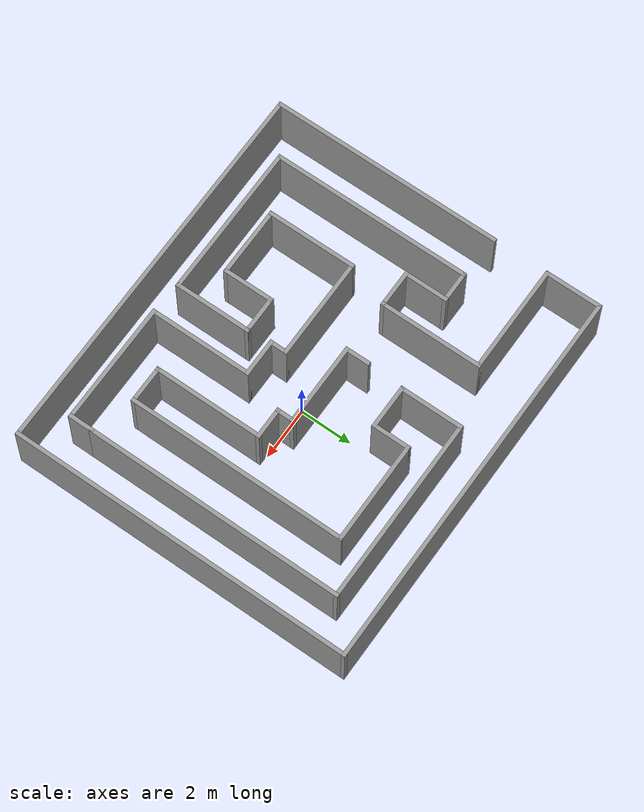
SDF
<?xml version='1.0'?>
<sdf version='1.7'>
  <model name='test'>
    <pose>-0.614659 -0.052239 0 0 -0 0</pose>
    <link name='Wall_10'>
      <collision name='Wall_10_Collision'>
        <geometry>
          <box>
            <size>4 0.15 2.5</size>
          </box>
        </geometry>
        <pose>0 0 1.25 0 -0 0</pose>
      </collision>
      <visual name='Wall_10_Visual'>
        <pose>0 0 1.25 0 -0 0</pose>
        <geometry>
          <box>
            <size>4 0.15 2.5</size>
          </box>
        </geometry>
        <material>
          <script>
            <uri>file://media/materials/scripts/gazebo.material</uri>
            <name>Gazebo/Grey</name>
          </script>
          <ambient>1 1 1 1</ambient>
        </material>
        <meta>
          <layer>0</layer>
        </meta>
      </visual>
      <pose>-3.325 2.525 0 0 -0 -1.5708</pose>
    </link>
    <link name='Wall_11'>
      <collision name='Wall_11_Collision'>
        <geometry>
          <box>
            <size>1.5 0.15 2.5</size>
          </box>
        </geometry>
        <pose>0 0 1.25 0 -0 0</pose>
      </collision>
      <visual name='Wall_11_Visual'>
        <pose>0 0 1.25 0 -0 0</pose>
        <geometry>
          <box>
            <size>1.5 0.15 2.5</size>
          </box>
        </geometry>
        <material>
          <script>
            <uri>file://media/materials/scripts/gazebo.material</uri>
            <name>Gazebo/Grey</name>
          </script>
          <ambient>1 1 1 1</ambient>
        </material>
        <meta>
          <layer>0</layer>
        </meta>
      </visual>
      <pose>-4 0.6 0 0 -0 3.14159</pose>
    </link>
    <link name='Wall_12'>
      <collision name='Wall_12_Collision'>
        <geometry>
          <box>
            <size>1.75 0.15 2.5</size>
          </box>
        </geometry>
        <pose>0 0 1.25 0 -0 0</pose>
      </collision>
      <visual name='Wall_12_Visual'>
        <pose>0 0 1.25 0 -0 0</pose>
        <geometry>
          <box>
            <size>1.75 0.15 2.5</size>
          </box>
        </geometry>
        <material>
          <script>
            <uri>file://media/materials/scripts/gazebo.material</uri>
            <name>Gazebo/Grey</name>
          </script>
          <ambient>1 1 1 1</ambient>
        </material>
        <meta>
          <layer>0</layer>
        </meta>
      </visual>
      <pose>-4.675 1.4 0 0 -0 1.5708</pose>
    </link>
    <link name='Wall_13'>
      <collision name='Wall_13_Collision'>
        <geometry>
          <box>
            <size>1.25 0.15 2.5</size>
          </box>
        </geometry>
        <pose>0 0 1.25 0 -0 0</pose>
      </collision>
      <visual name='Wall_13_Visual'>
        <pose>0 0 1.25 0 -0 0</pose>
        <geometry>
          <box>
            <size>1.25 0.15 2.5</size>
          </box>
        </geometry>
        <material>
          <script>
            <uri>file://media/materials/scripts/gazebo.material</uri>
            <name>Gazebo/Grey</name>
          </script>
          <ambient>1 1 1 1</ambient>
        </material>
        <meta>
          <layer>0</layer>
        </meta>
      </visual>
      <pose>-5.225 2.2 0 0 -0 3.14159</pose>
    </link>
    <link name='Wall_14'>
      <collision name='Wall_14_Collision'>
        <geometry>
          <box>
            <size>7.75 0.15 2.5</size>
          </box>
        </geometry>
        <pose>0 0 1.25 0 -0 0</pose>
      </collision>
      <visual name='Wall_14_Visual'>
        <pose>0 0 1.25 0 -0 0</pose>
        <geometry>
          <box>
            <size>7.75 0.15 2.5</size>
          </box>
        </geometry>
        <material>
          <script>
            <uri>file://media/materials/scripts/gazebo.material</uri>
            <name>Gazebo/Grey</name>
          </script>
          <ambient>1 1 1 1</ambient>
        </material>
        <meta>
          <layer>0</layer>
        </meta>
      </visual>
      <pose>-5.775 -1.6 0 0 -0 -1.5708</pose>
    </link>
    <link name='Wall_15'>
      <collision name='Wall_15_Collision'>
        <geometry>
          <box>
            <size>6 0.15 2.5</size>
          </box>
        </geometry>
        <pose>0 0 1.25 0 -0 0</pose>
      </collision>
      <visual name='Wall_15_Visual'>
        <pose>0 0 1.25 0 -0 0</pose>
        <geometry>
          <box>
            <size>6 0.15 2.5</size>
          </box>
        </geometry>
        <material>
          <script>
            <uri>file://media/materials/scripts/gazebo.material</uri>
            <name>Gazebo/Grey</name>
          </script>
          <ambient>1 1 1 1</ambient>
        </material>
        <meta>
          <layer>0</layer>
        </meta>
      </visual>
      <pose>-2.85 -5.4 0 0 -0 0</pose>
    </link>
    <link name='Wall_16'>
      <collision name='Wall_16_Collision'>
        <geometry>
          <box>
            <size>3 0.15 2.5</size>
          </box>
        </geometry>
        <pose>0 0 1.25 0 -0 0</pose>
      </collision>
      <visual name='Wall_16_Visual'>
        <pose>0 0 1.25 0 -0 0</pose>
        <geometry>
          <box>
            <size>3 0.15 2.5</size>
          </box>
        </geometry>
        <material>
          <script>
            <uri>file://media/materials/scripts/gazebo.material</uri>
            <name>Gazebo/Grey</name>
          </script>
          <ambient>1 1 1 1</ambient>
        </material>
        <meta>
          <layer>0</layer>
        </meta>
      </visual>
      <pose>0.075 -3.975 0 0 -0 1.5708</pose>
    </link>
    <link name='Wall_17'>
      <collision name='Wall_17_Collision'>
        <geometry>
          <box>
            <size>1.5 0.15 2.5</size>
          </box>
        </geometry>
        <pose>0 0 1.25 0 -0 0</pose>
      </collision>
      <visual name='Wall_17_Visual'>
        <pose>0 0 1.25 0 -0 0</pose>
        <geometry>
          <box>
            <size>1.5 0.15 2.5</size>
          </box>
        </geometry>
        <material>
          <script>
            <uri>file://media/materials/scripts/gazebo.material</uri>
            <name>Gazebo/Grey</name>
          </script>
          <ambient>1 1 1 1</ambient>
        </material>
        <meta>
          <layer>0</layer>
        </meta>
      </visual>
      <pose>-0.6 -2.55 0 0 -0 3.14159</pose>
    </link>
    <link name='Wall_18'>
      <collision name='Wall_18_Collision'>
        <geometry>
          <box>
            <size>2 0.15 2.5</size>
          </box>
        </geometry>
        <pose>0 0 1.25 0 -0 0</pose>
      </collision>
      <visual name='Wall_18_Visual'>
        <pose>0 0 1.25 0 -0 0</pose>
        <geometry>
          <box>
            <size>2 0.15 2.5</size>
          </box>
        </geometry>
        <material>
          <script>
            <uri>file://media/materials/scripts/gazebo.material</uri>
            <name>Gazebo/Grey</name>
          </script>
          <ambient>1 1 1 1</ambient>
        </material>
        <meta>
          <layer>0</layer>
        </meta>
      </visual>
      <pose>-1.275 -3.475 0 0 -0 -1.5708</pose>
    </link>
    <link name='Wall_19'>
      <collision name='Wall_19_Collision'>
        <geometry>
          <box>
            <size>2.75 0.15 2.5</size>
          </box>
        </geometry>
        <pose>0 0 1.25 0 -0 0</pose>
      </collision>
      <visual name='Wall_19_Visual'>
        <pose>0 0 1.25 0 -0 0</pose>
        <geometry>
          <box>
            <size>2.75 0.15 2.5</size>
          </box>
        </geometry>
        <material>
          <script>
            <uri>file://media/materials/scripts/gazebo.material</uri>
            <name>Gazebo/Grey</name>
          </script>
          <ambient>1 1 1 1</ambient>
        </material>
        <meta>
          <layer>0</layer>
        </meta>
      </visual>
      <pose>-2.575 -4.4 0 0 -0 3.14159</pose>
    </link>
    <link name='Wall_20'>
      <collision name='Wall_20_Collision'>
        <geometry>
          <box>
            <size>3.5 0.15 2.5</size>
          </box>
        </geometry>
        <pose>0 0 1.25 0 -0 0</pose>
      </collision>
      <visual name='Wall_20_Visual'>
        <pose>0 0 1.25 0 -0 0</pose>
        <geometry>
          <box>
            <size>3.5 0.15 2.5</size>
          </box>
        </geometry>
        <material>
          <script>
            <uri>file://media/materials/scripts/gazebo.material</uri>
            <name>Gazebo/Grey</name>
          </script>
          <ambient>1 1 1 1</ambient>
        </material>
        <meta>
          <layer>0</layer>
        </meta>
      </visual>
      <pose>-3.875 -2.725 0 0 -0 1.5708</pose>
    </link>
    <link name='Wall_21'>
      <collision name='Wall_21_Collision'>
        <geometry>
          <box>
            <size>4 0.15 2.5</size>
          </box>
        </geometry>
        <pose>0 0 1.25 0 -0 0</pose>
      </collision>
      <visual name='Wall_21_Visual'>
        <pose>0 0 1.25 0 -0 0</pose>
        <geometry>
          <box>
            <size>4 0.15 2.5</size>
          </box>
        </geometry>
        <material>
          <script>
            <uri>file://media/materials/scripts/gazebo.material</uri>
            <name>Gazebo/Grey</name>
          </script>
          <ambient>1 1 1 1</ambient>
        </material>
        <meta>
          <layer>0</layer>
        </meta>
      </visual>
      <pose>-1.95 -1.05 0 0 -0 0</pose>
    </link>
    <link name='Wall_22'>
      <collision name='Wall_22_Collision'>
        <geometry>
          <box>
            <size>0.75 0.15 2.5</size>
          </box>
        </geometry>
        <pose>0 0 1.25 0 -0 0</pose>
      </collision>
      <visual name='Wall_22_Visual'>
        <pose>0 0 1.25 0 -0 0</pose>
        <geometry>
          <box>
            <size>0.75 0.15 2.5</size>
          </box>
        </geometry>
        <material>
          <script>
            <uri>file://media/materials/scripts/gazebo.material</uri>
            <name>Gazebo/Grey</name>
          </script>
          <ambient>1 1 1 1</ambient>
        </material>
        <meta>
          <layer>0</layer>
        </meta>
      </visual>
      <pose>-0.025 -1.35 0 0 -0 -1.5708</pose>
    </link>
    <link name='Wall_23'>
      <collision name='Wall_23_Collision'>
        <geometry>
          <box>
            <size>1.5 0.15 2.5</size>
          </box>
        </geometry>
        <pose>0 0 1.25 0 -0 0</pose>
      </collision>
      <visual name='Wall_23_Visual'>
        <pose>0 0 1.25 0 -0 0</pose>
        <geometry>
          <box>
            <size>1.5 0.15 2.5</size>
          </box>
        </geometry>
        <material>
          <script>
            <uri>file://media/materials/scripts/gazebo.material</uri>
            <name>Gazebo/Grey</name>
          </script>
          <ambient>1 1 1 1</ambient>
        </material>
        <meta>
          <layer>0</layer>
        </meta>
      </visual>
      <pose>0.65 -1.65 0 0 -0 0</pose>
    </link>
    <link name='Wall_24'>
      <collision name='Wall_24_Collision'>
        <geometry>
          <box>
            <size>4 0.15 2.5</size>
          </box>
        </geometry>
        <pose>0 0 1.25 0 -0 0</pose>
      </collision>
      <visual name='Wall_24_Visual'>
        <pose>0 0 1.25 0 -0 0</pose>
        <geometry>
          <box>
            <size>4 0.15 2.5</size>
          </box>
        </geometry>
        <material>
          <script>
            <uri>file://media/materials/scripts/gazebo.material</uri>
            <name>Gazebo/Grey</name>
          </script>
          <ambient>1 1 1 1</ambient>
        </material>
        <meta>
          <layer>0</layer>
        </meta>
      </visual>
      <pose>1.325 -3.575 0 0 -0 -1.5708</pose>
    </link>
    <link name='Wall_25'>
      <collision name='Wall_25_Collision'>
        <geometry>
          <box>
            <size>4.75 0.15 2.5</size>
          </box>
        </geometry>
        <pose>0 0 1.25 0 -0 0</pose>
      </collision>
      <visual name='Wall_25_Visual'>
        <pose>0 0 1.25 0 -0 0</pose>
        <geometry>
          <box>
            <size>4.75 0.15 2.5</size>
          </box>
        </geometry>
        <material>
          <script>
            <uri>file://media/materials/scripts/gazebo.material</uri>
            <name>Gazebo/Grey</name>
          </script>
          <ambient>1 1 1 1</ambient>
        </material>
        <meta>
          <layer>0</layer>
        </meta>
      </visual>
      <pose>3.625 -5.5 0 0 -0 0</pose>
    </link>
    <link name='Wall_26'>
      <collision name='Wall_26_Collision'>
        <geometry>
          <box>
            <size>1 0.15 2.5</size>
          </box>
        </geometry>
        <pose>0 0 1.25 0 -0 0</pose>
      </collision>
      <visual name='Wall_26_Visual'>
        <pose>0 0 1.25 0 -0 0</pose>
        <geometry>
          <box>
            <size>1 0.15 2.5</size>
          </box>
        </geometry>
        <material>
          <script>
            <uri>file://media/materials/scripts/gazebo.material</uri>
            <name>Gazebo/Grey</name>
          </script>
          <ambient>1 1 1 1</ambient>
        </material>
        <meta>
          <layer>0</layer>
        </meta>
      </visual>
      <pose>5.925 -5.075 0 0 -0 1.5708</pose>
    </link>
    <link name='Wall_27'>
      <collision name='Wall_27_Collision'>
        <geometry>
          <box>
            <size>10 0.15 2.5</size>
          </box>
        </geometry>
        <pose>0 0 1.25 0 -0 0</pose>
      </collision>
      <visual name='Wall_27_Visual'>
        <pose>0 0 1.25 0 -0 0</pose>
        <geometry>
          <box>
            <size>10 0.15 2.5</size>
          </box>
        </geometry>
        <material>
          <script>
            <uri>file://media/materials/scripts/gazebo.material</uri>
            <name>Gazebo/Grey</name>
          </script>
          <ambient>1 1 1 1</ambient>
        </material>
        <meta>
          <layer>0</layer>
        </meta>
      </visual>
      <pose>5.925 0.275 0 0 -0 1.5708</pose>
    </link>
    <link name='Wall_28'>
      <collision name='Wall_28_Collision'>
        <geometry>
          <box>
            <size>7.25 0.15 2.5</size>
          </box>
        </geometry>
        <pose>0 0 1.25 0 -0 0</pose>
      </collision>
      <visual name='Wall_28_Visual'>
        <pose>0 0 1.25 0 -0 0</pose>
        <geometry>
          <box>
            <size>7.25 0.15 2.5</size>
          </box>
        </geometry>
        <material>
          <script>
            <uri>file://media/materials/scripts/gazebo.material</uri>
            <name>Gazebo/Grey</name>
          </script>
          <ambient>1 1 1 1</ambient>
        </material>
        <meta>
          <layer>0</layer>
        </meta>
      </visual>
      <pose>2.375 5.2 0 0 -0 3.14159</pose>
    </link>
    <link name='Wall_29'>
      <collision name='Wall_29_Collision'>
        <geometry>
          <box>
            <size>2.5 0.15 2.5</size>
          </box>
        </geometry>
        <pose>0 0 1.25 0 -0 0</pose>
      </collision>
      <visual name='Wall_29_Visual'>
        <pose>0 0 1.25 0 -0 0</pose>
        <geometry>
          <box>
            <size>2.5 0.15 2.5</size>
          </box>
        </geometry>
        <material>
          <script>
            <uri>file://media/materials/scripts/gazebo.material</uri>
            <name>Gazebo/Grey</name>
          </script>
          <ambient>1 1 1 1</ambient>
        </material>
        <meta>
          <layer>0</layer>
        </meta>
      </visual>
      <pose>-1.175 4.025 0 0 -0 -1.5708</pose>
    </link>
    <link name='Wall_30'>
      <collision name='Wall_30_Collision'>
        <geometry>
          <box>
            <size>1.75 0.15 2.5</size>
          </box>
        </geometry>
        <pose>0 0 1.25 0 -0 0</pose>
      </collision>
      <visual name='Wall_30_Visual'>
        <pose>0 0 1.25 0 -0 0</pose>
        <geometry>
          <box>
            <size>1.75 0.15 2.5</size>
          </box>
        </geometry>
        <material>
          <script>
            <uri>file://media/materials/scripts/gazebo.material</uri>
            <name>Gazebo/Grey</name>
          </script>
          <ambient>1 1 1 1</ambient>
        </material>
        <meta>
          <layer>0</layer>
        </meta>
      </visual>
      <pose>-0.375 2.85 0 0 -0 0</pose>
    </link>
    <link name='Wall_31'>
      <collision name='Wall_31_Collision'>
        <geometry>
          <box>
            <size>1.5 0.15 2.5</size>
          </box>
        </geometry>
        <pose>0 0 1.25 0 -0 0</pose>
      </collision>
      <visual name='Wall_31_Visual'>
        <pose>0 0 1.25 0 -0 0</pose>
        <geometry>
          <box>
            <size>1.5 0.15 2.5</size>
          </box>
        </geometry>
        <material>
          <script>
            <uri>file://media/materials/scripts/gazebo.material</uri>
            <name>Gazebo/Grey</name>
          </script>
          <ambient>1 1 1 1</ambient>
        </material>
        <meta>
          <layer>0</layer>
        </meta>
      </visual>
      <pose>0.425 3.525 0 0 -0 1.5708</pose>
    </link>
    <link name='Wall_32'>
      <collision name='Wall_32_Collision'>
        <geometry>
          <box>
            <size>4 0.15 2.5</size>
          </box>
        </geometry>
        <pose>0 0 1.25 0 -0 0</pose>
      </collision>
      <visual name='Wall_32_Visual'>
        <pose>0 0 1.25 0 -0 0</pose>
        <geometry>
          <box>
            <size>4 0.15 2.5</size>
          </box>
        </geometry>
        <material>
          <script>
            <uri>file://media/materials/scripts/gazebo.material</uri>
            <name>Gazebo/Grey</name>
          </script>
          <ambient>1 1 1 1</ambient>
        </material>
        <meta>
          <layer>0</layer>
        </meta>
      </visual>
      <pose>2.35 4.2 0 0 -0 0</pose>
    </link>
    <link name='Wall_33'>
      <collision name='Wall_33_Collision'>
        <geometry>
          <box>
            <size>8.5 0.15 2.5</size>
          </box>
        </geometry>
        <pose>0 0 1.25 0 -0 0</pose>
      </collision>
      <visual name='Wall_33_Visual'>
        <pose>0 0 1.25 0 -0 0</pose>
        <geometry>
          <box>
            <size>8.5 0.15 2.5</size>
          </box>
        </geometry>
        <material>
          <script>
            <uri>file://media/materials/scripts/gazebo.material</uri>
            <name>Gazebo/Grey</name>
          </script>
          <ambient>1 1 1 1</ambient>
        </material>
        <meta>
          <layer>0</layer>
        </meta>
      </visual>
      <pose>4.275 0.025 0 0 -0 -1.5708</pose>
    </link>
    <link name='Wall_34'>
      <collision name='Wall_34_Collision'>
        <geometry>
          <box>
            <size>1.5 0.15 2.5</size>
          </box>
        </geometry>
        <pose>0 0 1.25 0 -0 0</pose>
      </collision>
      <visual name='Wall_34_Visual'>
        <pose>0 0 1.25 0 -0 0</pose>
        <geometry>
          <box>
            <size>1.5 0.15 2.5</size>
          </box>
        </geometry>
        <material>
          <script>
            <uri>file://media/materials/scripts/gazebo.material</uri>
            <name>Gazebo/Grey</name>
          </script>
          <ambient>1 1 1 1</ambient>
        </material>
        <meta>
          <layer>0</layer>
        </meta>
      </visual>
      <pose>3.6 -4.15 0 0 -0 3.14159</pose>
    </link>
    <link name='Wall_35'>
      <collision name='Wall_35_Collision'>
        <geometry>
          <box>
            <size>4.25 0.15 2.5</size>
          </box>
        </geometry>
        <pose>0 0 1.25 0 -0 0</pose>
      </collision>
      <visual name='Wall_35_Visual'>
        <pose>0 0 1.25 0 -0 0</pose>
        <geometry>
          <box>
            <size>4.25 0.15 2.5</size>
          </box>
        </geometry>
        <material>
          <script>
            <uri>file://media/materials/scripts/gazebo.material</uri>
            <name>Gazebo/Grey</name>
          </script>
          <ambient>1 1 1 1</ambient>
        </material>
        <meta>
          <layer>0</layer>
        </meta>
      </visual>
      <pose>2.925 -2.1 0 0 -0 1.5708</pose>
    </link>
    <link name='Wall_36'>
      <collision name='Wall_36_Collision'>
        <geometry>
          <box>
            <size>1.25 0.15 2.5</size>
          </box>
        </geometry>
        <pose>0 0 1.25 0 -0 0</pose>
      </collision>
      <visual name='Wall_36_Visual'>
        <pose>0 0 1.25 0 -0 0</pose>
        <geometry>
          <box>
            <size>1.25 0.15 2.5</size>
          </box>
        </geometry>
        <material>
          <script>
            <uri>file://media/materials/scripts/gazebo.material</uri>
            <name>Gazebo/Grey</name>
          </script>
          <ambient>1 1 1 1</ambient>
        </material>
        <meta>
          <layer>0</layer>
        </meta>
      </visual>
      <pose>2.375 -0.05 0 0 -0 3.14159</pose>
    </link>
    <link name='Wall_37'>
      <collision name='Wall_37_Collision'>
        <geometry>
          <box>
            <size>0.75 0.15 2.5</size>
          </box>
        </geometry>
        <pose>0 0 1.25 0 -0 0</pose>
      </collision>
      <visual name='Wall_37_Visual'>
        <pose>0 0 1.25 0 -0 0</pose>
        <geometry>
          <box>
            <size>0.75 0.15 2.5</size>
          </box>
        </geometry>
        <material>
          <script>
            <uri>file://media/materials/scripts/gazebo.material</uri>
            <name>Gazebo/Grey</name>
          </script>
          <ambient>1 1 1 1</ambient>
        </material>
        <meta>
          <layer>0</layer>
        </meta>
      </visual>
      <pose>1.825 0.25 0 0 -0 1.5708</pose>
    </link>
    <link name='Wall_38'>
      <collision name='Wall_38_Collision'>
        <geometry>
          <box>
            <size>3.25 0.15 2.5</size>
          </box>
        </geometry>
        <pose>0 0 1.25 0 -0 0</pose>
      </collision>
      <visual name='Wall_38_Visual'>
        <pose>0 0 1.25 0 -0 0</pose>
        <geometry>
          <box>
            <size>3.25 0.15 2.5</size>
          </box>
        </geometry>
        <material>
          <script>
            <uri>file://media/materials/scripts/gazebo.material</uri>
            <name>Gazebo/Grey</name>
          </script>
          <ambient>1 1 1 1</ambient>
        </material>
        <meta>
          <layer>0</layer>
        </meta>
      </visual>
      <pose>0.275 0.55 0 0 -0 3.14159</pose>
    </link>
    <link name='Wall_39'>
      <collision name='Wall_39_Collision'>
        <geometry>
          <box>
            <size>1 0.15 2.5</size>
          </box>
        </geometry>
        <pose>0 0 1.25 0 -0 0</pose>
      </collision>
      <visual name='Wall_39_Visual'>
        <pose>0 0 1.25 0 -0 0</pose>
        <geometry>
          <box>
            <size>1 0.15 2.5</size>
          </box>
        </geometry>
        <material>
          <script>
            <uri>file://media/materials/scripts/gazebo.material</uri>
            <name>Gazebo/Grey</name>
          </script>
          <ambient>1 1 1 1</ambient>
        </material>
        <meta>
          <layer>0</layer>
        </meta>
      </visual>
      <pose>-1.275 0.975 0 0 -0 1.5708</pose>
    </link>
    <link name='Wall_4'>
      <collision name='Wall_4_Collision'>
        <geometry>
          <box>
            <size>9 0.15 2.5</size>
          </box>
        </geometry>
        <pose>0 0 1.25 0 -0 0</pose>
      </collision>
      <visual name='Wall_4_Visual'>
        <pose>0 0 1.25 0 -0 0</pose>
        <geometry>
          <box>
            <size>9 0.15 2.5</size>
          </box>
        </geometry>
        <material>
          <script>
            <uri>file://media/materials/scripts/gazebo.material</uri>
            <name>Gazebo/Grey</name>
          </script>
          <ambient>1 1 1 1</ambient>
        </material>
        <meta>
          <layer>0</layer>
        </meta>
      </visual>
      <pose>-7.425 -2.125 0 0 -0 -1.5708</pose>
    </link>
    <link name='Wall_5'>
      <collision name='Wall_5_Collision'>
        <geometry>
          <box>
            <size>15 0.15 2.5</size>
          </box>
        </geometry>
        <pose>0 0 1.25 0 -0 0</pose>
      </collision>
      <visual name='Wall_5_Visual'>
        <pose>0 0 1.25 0 -0 0</pose>
        <geometry>
          <box>
            <size>15 0.15 2.5</size>
          </box>
        </geometry>
        <material>
          <script>
            <uri>file://media/materials/scripts/gazebo.material</uri>
            <name>Gazebo/Grey</name>
          </script>
          <ambient>1 1 1 1</ambient>
        </material>
        <meta>
          <layer>0</layer>
        </meta>
      </visual>
      <pose>0 -6.55 0 0 -0 0</pose>
    </link>
    <link name='Wall_6'>
      <collision name='Wall_6_Collision'>
        <geometry>
          <box>
            <size>13.25 0.15 2.5</size>
          </box>
        </geometry>
        <pose>0 0 1.25 0 -0 0</pose>
      </collision>
      <visual name='Wall_6_Visual'>
        <pose>0 0 1.25 0 -0 0</pose>
        <geometry>
          <box>
            <size>13.25 0.15 2.5</size>
          </box>
        </geometry>
        <material>
          <script>
            <uri>file://media/materials/scripts/gazebo.material</uri>
            <name>Gazebo/Grey</name>
          </script>
          <ambient>1 1 1 1</ambient>
        </material>
        <meta>
          <layer>0</layer>
        </meta>
      </visual>
      <pose>7.425 -0 0 0 -0 1.5708</pose>
    </link>
    <link name='Wall_7'>
      <collision name='Wall_7_Collision'>
        <geometry>
          <box>
            <size>15 0.15 2.5</size>
          </box>
        </geometry>
        <pose>0 0 1.25 0 -0 0</pose>
      </collision>
      <visual name='Wall_7_Visual'>
        <pose>0 0 1.25 0 -0 0</pose>
        <geometry>
          <box>
            <size>15 0.15 2.5</size>
          </box>
        </geometry>
        <material>
          <script>
            <uri>file://media/materials/scripts/gazebo.material</uri>
            <name>Gazebo/Grey</name>
          </script>
          <ambient>1 1 1 1</ambient>
        </material>
        <meta>
          <layer>0</layer>
        </meta>
      </visual>
      <pose>0 6.55 0 0 -0 3.14159</pose>
    </link>
    <link name='Wall_8'>
      <collision name='Wall_8_Collision'>
        <geometry>
          <box>
            <size>2.25 0.15 2.5</size>
          </box>
        </geometry>
        <pose>0 0 1.25 0 -0 0</pose>
      </collision>
      <visual name='Wall_8_Visual'>
        <pose>0 0 1.25 0 -0 0</pose>
        <geometry>
          <box>
            <size>2.25 0.15 2.5</size>
          </box>
        </geometry>
        <material>
          <script>
            <uri>file://media/materials/scripts/gazebo.material</uri>
            <name>Gazebo/Grey</name>
          </script>
          <ambient>1 1 1 1</ambient>
        </material>
        <meta>
          <layer>0</layer>
        </meta>
      </visual>
      <pose>-7.425 5.5 0 0 -0 -1.5708</pose>
    </link>
    <link name='Wall_9'>
      <collision name='Wall_9_Collision'>
        <geometry>
          <box>
            <size>4.25 0.15 2.5</size>
          </box>
        </geometry>
        <pose>0 0 1.25 0 -0 0</pose>
      </collision>
      <visual name='Wall_9_Visual'>
        <pose>0 0 1.25 0 -0 0</pose>
        <geometry>
          <box>
            <size>4.25 0.15 2.5</size>
          </box>
        </geometry>
        <material>
          <script>
            <uri>file://media/materials/scripts/gazebo.material</uri>
            <name>Gazebo/Grey</name>
          </script>
          <ambient>1 1 1 1</ambient>
        </material>
        <meta>
          <layer>0</layer>
        </meta>
      </visual>
      <pose>-5.375 4.45 0 0 -0 0</pose>
    </link>
    <static>1</static>
  </model>
</sdf>
